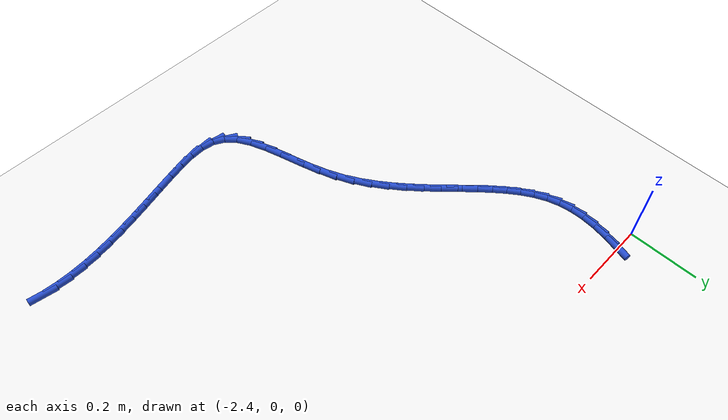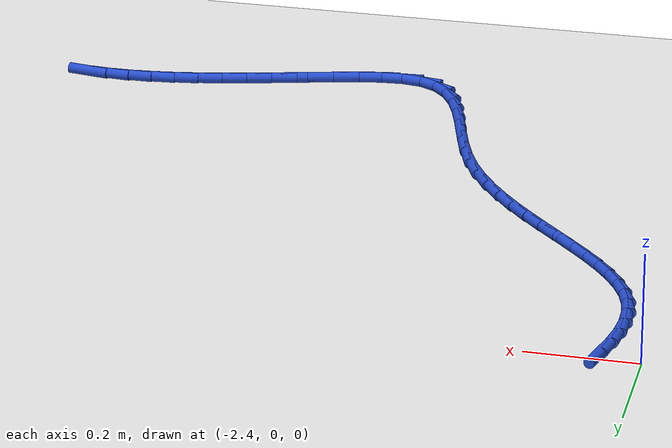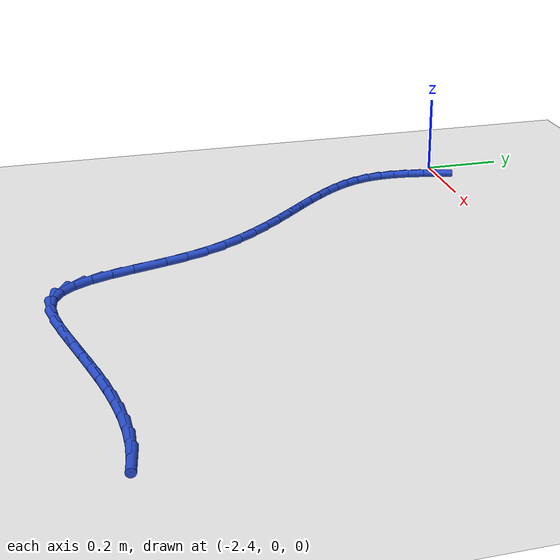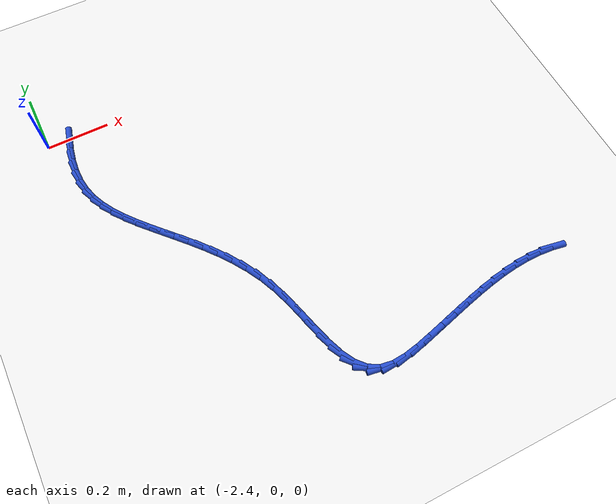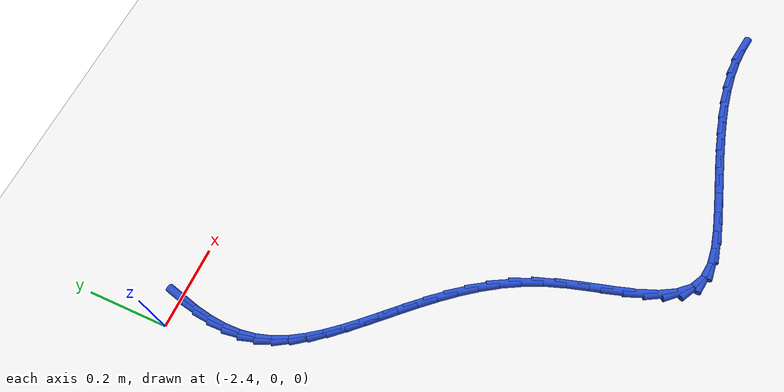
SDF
<sdf version="1.6">
 <world name="default">
  <model name="ground_plane">
   <static>1</static>
   <link name="link">
    <collision name="collision">
     <geometry><plane><normal>0 0 1</normal><size>100 100</size></plane></geometry>
     <surface><friction><ode><mu>100</mu><mu2>50</mu2></ode></friction></surface>
    </collision>
    <visual name="visual">
     <cast_shadows>0</cast_shadows>
     <geometry><plane><normal>0 0 1</normal><size>100 100</size></plane></geometry>
     <material>
      <script><uri>file://media/materials/scripts/gazebo.material</uri><name>Gazebo/WhiteGlow</name></script>
     </material>
    </visual>
   </link>
  </model>
  <model name="line">
   <link name="link_85">
    <pose>-2.3280978423598997 -0.002702165143702015 0.01 0 1.57 1.3194504571908288</pose>
    <collision name="collision">
     <geometry><cylinder><radius>0.01</radius><length>0.08</length></cylinder></geometry>
    </collision>
    <visual name="visual">
     <material>
      <script><name>Gazebo/Blue</name><uri>file://media/materials/scripts/gazebo.material</uri></script>
     </material>
     <geometry><cylinder><radius>0.01</radius><length>0.08</length></cylinder></geometry>
    </visual>
   </link>
   <link name="link_86">
    <pose>-2.3389520706183267 -0.04497335403110818 0.01 0 1.57 1.3944385432576636</pose>
    <collision name="collision">
     <geometry><cylinder><radius>0.01</radius><length>0.08</length></cylinder></geometry>
    </collision>
    <visual name="visual">
     <material>
      <script><name>Gazebo/Blue</name><uri>file://media/materials/scripts/gazebo.material</uri></script>
     </material>
     <geometry><cylinder><radius>0.01</radius><length>0.08</length></cylinder></geometry>
    </visual>
   </link>
   <link name="link_87">
    <pose>-2.3463109246212555 -0.08626670292172889 0.01 0 1.57 1.4860862478899712</pose>
    <collision name="collision">
     <geometry><cylinder><radius>0.01</radius><length>0.08</length></cylinder></geometry>
    </collision>
    <visual name="visual">
     <material>
      <script><name>Gazebo/Blue</name><uri>file://media/materials/scripts/gazebo.material</uri></script>
     </material>
     <geometry><cylinder><radius>0.01</radius><length>0.08</length></cylinder></geometry>
    </visual>
   </link>
   <link name="link_88">
    <pose>-2.3497240792425242 -0.12646247090614107 0.01 0 1.57 -1.5455859413409028</pose>
    <collision name="collision">
     <geometry><cylinder><radius>0.01</radius><length>0.08</length></cylinder></geometry>
    </collision>
    <visual name="visual">
     <material>
      <script><name>Gazebo/Blue</name><uri>file://media/materials/scripts/gazebo.material</uri></script>
     </material>
     <geometry><cylinder><radius>0.01</radius><length>0.08</length></cylinder></geometry>
    </visual>
   </link>
   <link name="link_89">
    <pose>-2.3487412093559685 -0.1654409170749221 0.01 0 1.57 -1.417154802262365</pose>
    <collision name="collision">
     <geometry><cylinder><radius>0.01</radius><length>0.08</length></cylinder></geometry>
    </collision>
    <visual name="visual">
     <material>
      <script><name>Gazebo/Blue</name><uri>file://media/materials/scripts/gazebo.material</uri></script>
     </material>
     <geometry><cylinder><radius>0.01</radius><length>0.08</length></cylinder></geometry>
    </visual>
   </link>
   <link name="link_90">
    <pose>-2.3429119898354256 -0.20308230051864734 0.01 0 1.57 -1.2741014134072206</pose>
    <collision name="collision">
     <geometry><cylinder><radius>0.01</radius><length>0.08</length></cylinder></geometry>
    </collision>
    <visual name="visual">
     <material>
      <script><name>Gazebo/Blue</name><uri>file://media/materials/scripts/gazebo.material</uri></script>
     </material>
     <geometry><cylinder><radius>0.01</radius><length>0.08</length></cylinder></geometry>
    </visual>
   </link>
   <link name="link_91">
    <pose>-2.331842697555519 -0.23928975633999397 0.01 0 1.57 -1.1399224422944256</pose>
    <collision name="collision">
     <geometry><cylinder><radius>0.01</radius><length>0.08</length></cylinder></geometry>
    </collision>
    <visual name="visual">
     <material>
      <script><name>Gazebo/Blue</name><uri>file://media/materials/scripts/gazebo.material</uri></script>
     </material>
     <geometry><cylinder><radius>0.01</radius><length>0.08</length></cylinder></geometry>
    </visual>
   </link>
   <link name="link_92">
    <pose>-2.315783024039038 -0.27422645923515465 0.01 0 1.57 -1.0304720593524865</pose>
    <collision name="collision">
     <geometry><cylinder><radius>0.01</radius><length>0.08</length></cylinder></geometry>
    </collision>
    <visual name="visual">
     <material>
      <script><name>Gazebo/Blue</name><uri>file://media/materials/scripts/gazebo.material</uri></script>
     </material>
     <geometry><cylinder><radius>0.01</radius><length>0.08</length></cylinder></geometry>
    </visual>
   </link>
   <link name="link_93">
    <pose>-2.295390945486528 -0.3082205944140638 0.01 0 1.57 -0.9462863864774075</pose>
    <collision name="collision">
     <geometry><cylinder><radius>0.01</radius><length>0.08</length></cylinder></geometry>
    </collision>
    <visual name="visual">
     <material>
      <script><name>Gazebo/Blue</name><uri>file://media/materials/scripts/gazebo.material</uri></script>
     </material>
     <geometry><cylinder><radius>0.01</radius><length>0.08</length></cylinder></geometry>
    </visual>
   </link>
   <link name="link_94">
    <pose>-2.2713309428291146 -0.34160297600954664 0.01 0 1.57 -0.8854207401880506</pose>
    <collision name="collision">
     <geometry><cylinder><radius>0.01</radius><length>0.08</length></cylinder></geometry>
    </collision>
    <visual name="visual">
     <material>
      <script><name>Gazebo/Blue</name><uri>file://media/materials/scripts/gazebo.material</uri></script>
     </material>
     <geometry><cylinder><radius>0.01</radius><length>0.08</length></cylinder></geometry>
    </visual>
   </link>
   <link name="link_95">
    <pose>-2.244267496997929 -0.3747044181544264 0.01 0 1.57 -0.8452575890997895</pose>
    <collision name="collision">
     <geometry><cylinder><radius>0.01</radius><length>0.08</length></cylinder></geometry>
    </collision>
    <visual name="visual">
     <material>
      <script><name>Gazebo/Blue</name><uri>file://media/materials/scripts/gazebo.material</uri></script>
     </material>
     <geometry><cylinder><radius>0.01</radius><length>0.08</length></cylinder></geometry>
    </visual>
   </link>
   <link name="link_96">
    <pose>-2.2148650889240966 -0.4078557349815283 0.01 0 1.57 -0.8233795523402913</pose>
    <collision name="collision">
     <geometry><cylinder><radius>0.01</radius><length>0.08</length></cylinder></geometry>
    </collision>
    <visual name="visual">
     <material>
      <script><name>Gazebo/Blue</name><uri>file://media/materials/scripts/gazebo.material</uri></script>
     </material>
     <geometry><cylinder><radius>0.01</radius><length>0.08</length></cylinder></geometry>
    </visual>
   </link>
   <link name="link_97">
    <pose>-2.1837881995387454 -0.4413877406236769 0.01 0 1.57 -0.817899994068516</pose>
    <collision name="collision">
     <geometry><cylinder><radius>0.01</radius><length>0.08</length></cylinder></geometry>
    </collision>
    <visual name="visual">
     <material>
      <script><name>Gazebo/Blue</name><uri>file://media/materials/scripts/gazebo.material</uri></script>
     </material>
     <geometry><cylinder><radius>0.01</radius><length>0.08</length></cylinder></geometry>
    </visual>
   </link>
   <link name="link_98">
    <pose>-2.1517013097730024 -0.47563124921369687 0.01 0 1.57 -0.8275098563048306</pose>
    <collision name="collision">
     <geometry><cylinder><radius>0.01</radius><length>0.08</length></cylinder></geometry>
    </collision>
    <visual name="visual">
     <material>
      <script><name>Gazebo/Blue</name><uri>file://media/materials/scripts/gazebo.material</uri></script>
     </material>
     <geometry><cylinder><radius>0.01</radius><length>0.08</length></cylinder></geometry>
    </visual>
   </link>
   <link name="link_99">
    <pose>-2.119268900557995 -0.5109170748844133 0.01 0 1.57 -0.8513971260220212</pose>
    <collision name="collision">
     <geometry><cylinder><radius>0.01</radius><length>0.08</length></cylinder></geometry>
    </collision>
    <visual name="visual">
     <material>
      <script><name>Gazebo/Blue</name><uri>file://media/materials/scripts/gazebo.material</uri></script>
     </material>
     <geometry><cylinder><radius>0.01</radius><length>0.08</length></cylinder></geometry>
    </visual>
   </link>
   <link name="link_100">
    <pose>-2.087155452824853 -0.5475760317686494 0.01 0 1.57 -0.8891058357198707</pose>
    <collision name="collision">
     <geometry><cylinder><radius>0.01</radius><length>0.08</length></cylinder></geometry>
    </collision>
    <visual name="visual">
     <material>
      <script><name>Gazebo/Blue</name><uri>file://media/materials/scripts/gazebo.material</uri></script>
     </material>
     <geometry><cylinder><radius>0.01</radius><length>0.08</length></cylinder></geometry>
    </visual>
   </link>
   <link name="link_101">
    <pose>-2.0560254475047017 -0.5859389339992308 0.01 0 1.57 -0.940351178228666</pose>
    <collision name="collision">
     <geometry><cylinder><radius>0.01</radius><length>0.08</length></cylinder></geometry>
    </collision>
    <visual name="visual">
     <material>
      <script><name>Gazebo/Blue</name><uri>file://media/materials/scripts/gazebo.material</uri></script>
     </material>
     <geometry><cylinder><radius>0.01</radius><length>0.08</length></cylinder></geometry>
    </visual>
   </link>
   <link name="link_102">
    <pose>-2.0265433655286698 -0.6263365957089816 0.01 0 1.57 -1.0047879758717106</pose>
    <collision name="collision">
     <geometry><cylinder><radius>0.01</radius><length>0.08</length></cylinder></geometry>
    </collision>
    <visual name="visual">
     <material>
      <script><name>Gazebo/Blue</name><uri>file://media/materials/scripts/gazebo.material</uri></script>
     </material>
     <geometry><cylinder><radius>0.01</radius><length>0.08</length></cylinder></geometry>
    </visual>
   </link>
   <link name="link_103">
    <pose>-1.999373687827884 -0.6690998310307266 0.01 0 1.57 -1.0817358065791876</pose>
    <collision name="collision">
     <geometry><cylinder><radius>0.01</radius><length>0.08</length></cylinder></geometry>
    </collision>
    <visual name="visual">
     <material>
      <script><name>Gazebo/Blue</name><uri>file://media/materials/scripts/gazebo.material</uri></script>
     </material>
     <geometry><cylinder><radius>0.01</radius><length>0.08</length></cylinder></geometry>
    </visual>
   </link>
   <link name="link_104">
    <pose>-1.9751808953334724 -0.714559454097291 0.01 0 1.57 -1.1697182579742926</pose>
    <collision name="collision">
     <geometry><cylinder><radius>0.01</radius><length>0.08</length></cylinder></geometry>
    </collision>
    <visual name="visual">
     <material>
      <script><name>Gazebo/Blue</name><uri>file://media/materials/scripts/gazebo.material</uri></script>
     </material>
     <geometry><cylinder><radius>0.01</radius><length>0.08</length></cylinder></geometry>
    </visual>
   </link>
   <link name="link_105">
    <pose>-1.9546224475881064 -0.7630389755471103 0.01 0 1.57 -1.2502158124433773</pose>
    <collision name="collision">
     <geometry><cylinder><radius>0.01</radius><length>0.08</length></cylinder></geometry>
    </collision>
    <visual name="visual">
     <material>
      <script><name>Gazebo/Blue</name><uri>file://media/materials/scripts/gazebo.material</uri></script>
     </material>
     <geometry><cylinder><radius>0.01</radius><length>0.08</length></cylinder></geometry>
    </visual>
   </link>
   <link name="link_106">
    <pose>-1.9376568753385848 -0.8141348956033229 0.01 0 1.57 -1.2952111738500083</pose>
    <collision name="collision">
     <geometry><cylinder><radius>0.01</radius><length>0.08</length></cylinder></geometry>
    </collision>
    <visual name="visual">
     <material>
      <script><name>Gazebo/Blue</name><uri>file://media/materials/scripts/gazebo.material</uri></script>
     </material>
     <geometry><cylinder><radius>0.01</radius><length>0.08</length></cylinder></geometry>
    </visual>
   </link>
   <link name="link_107">
    <pose>-1.9229595997198383 -0.8661090519922399 0.01 0 1.57 -1.304728936408987</pose>
    <collision name="collision">
     <geometry><cylinder><radius>0.01</radius><length>0.08</length></cylinder></geometry>
    </collision>
    <visual name="visual">
     <material>
      <script><name>Gazebo/Blue</name><uri>file://media/materials/scripts/gazebo.material</uri></script>
     </material>
     <geometry><cylinder><radius>0.01</radius><length>0.08</length></cylinder></geometry>
    </visual>
   </link>
   <link name="link_108">
    <pose>-1.9090684886686347 -0.9170802026181482 0.01 0 1.57 -1.2770324754201199</pose>
    <collision name="collision">
     <geometry><cylinder><radius>0.01</radius><length>0.08</length></cylinder></geometry>
    </collision>
    <visual name="visual">
     <material>
      <script><name>Gazebo/Blue</name><uri>file://media/materials/scripts/gazebo.material</uri></script>
     </material>
     <geometry><cylinder><radius>0.01</radius><length>0.08</length></cylinder></geometry>
    </visual>
   </link>
   <link name="link_109">
    <pose>-1.8945214101217427 -0.965167105385335 0.01 0 1.57 -1.2035602330436568</pose>
    <collision name="collision">
     <geometry><cylinder><radius>0.01</radius><length>0.08</length></cylinder></geometry>
    </collision>
    <visual name="visual">
     <material>
      <script><name>Gazebo/Blue</name><uri>file://media/materials/scripts/gazebo.material</uri></script>
     </material>
     <geometry><cylinder><radius>0.01</radius><length>0.08</length></cylinder></geometry>
    </visual>
   </link>
   <link name="link_110">
    <pose>-1.8778562320159304 -1.0084885181980876 0.01 0 1.57 -1.0663982992321828</pose>
    <collision name="collision">
     <geometry><cylinder><radius>0.01</radius><length>0.08</length></cylinder></geometry>
    </collision>
    <visual name="visual">
     <material>
      <script><name>Gazebo/Blue</name><uri>file://media/materials/scripts/gazebo.material</uri></script>
     </material>
     <geometry><cylinder><radius>0.01</radius><length>0.08</length></cylinder></geometry>
    </visual>
   </link>
   <link name="link_111">
    <pose>-1.8576108222879668 -1.0451631989606909 0.01 0 1.57 -0.8388507254420966</pose>
    <collision name="collision">
     <geometry><cylinder><radius>0.01</radius><length>0.08</length></cylinder></geometry>
    </collision>
    <visual name="visual">
     <material>
      <script><name>Gazebo/Blue</name><uri>file://media/materials/scripts/gazebo.material</uri></script>
     </material>
     <geometry><cylinder><radius>0.01</radius><length>0.08</length></cylinder></geometry>
    </visual>
   </link>
   <link name="link_112">
    <pose>-1.8323230488746198 -1.0733099055774327 0.01 0 1.57 -0.5089022252920407</pose>
    <collision name="collision">
     <geometry><cylinder><radius>0.01</radius><length>0.08</length></cylinder></geometry>
    </collision>
    <visual name="visual">
     <material>
      <script><name>Gazebo/Blue</name><uri>file://media/materials/scripts/gazebo.material</uri></script>
     </material>
     <geometry><cylinder><radius>0.01</radius><length>0.08</length></cylinder></geometry>
    </visual>
   </link>
   <link name="link_113">
    <pose>-1.8005307797126577 -1.0910473959525997 0.01 0 1.57 -0.15858898993376433</pose>
    <collision name="collision">
     <geometry><cylinder><radius>0.01</radius><length>0.08</length></cylinder></geometry>
    </collision>
    <visual name="visual">
     <material>
      <script><name>Gazebo/Blue</name><uri>file://media/materials/scripts/gazebo.material</uri></script>
     </material>
     <geometry><cylinder><radius>0.01</radius><length>0.08</length></cylinder></geometry>
    </visual>
   </link>
   <link name="link_114">
    <pose>-1.7613843639570663 -1.097308161765927 0.01 0 1.57 0.06616239644078849</pose>
    <collision name="collision">
     <geometry><cylinder><radius>0.01</radius><length>0.08</length></cylinder></geometry>
    </collision>
    <visual name="visual">
     <material>
      <script><name>Gazebo/Blue</name><uri>file://media/materials/scripts/gazebo.material</uri></script>
     </material>
     <geometry><cylinder><radius>0.01</radius><length>0.08</length></cylinder></geometry>
    </visual>
   </link>
   <link name="link_115">
    <pose>-1.7165264410293706 -1.0943359158542791 0.01 0 1.57 0.18663784550487927</pose>
    <collision name="collision">
     <geometry><cylinder><radius>0.01</radius><length>0.08</length></cylinder></geometry>
    </collision>
    <visual name="visual">
     <material>
      <script><name>Gazebo/Blue</name><uri>file://media/materials/scripts/gazebo.material</uri></script>
     </material>
     <geometry><cylinder><radius>0.01</radius><length>0.08</length></cylinder></geometry>
    </visual>
   </link>
   <link name="link_116">
    <pose>-1.6682334967752073 -1.0852164903365542 0.01 0 1.57 0.2415197003030446</pose>
    <collision name="collision">
     <geometry><cylinder><radius>0.01</radius><length>0.08</length></cylinder></geometry>
    </collision>
    <visual name="visual">
     <material>
      <script><name>Gazebo/Blue</name><uri>file://media/materials/scripts/gazebo.material</uri></script>
     </material>
     <geometry><cylinder><radius>0.01</radius><length>0.08</length></cylinder></geometry>
    </visual>
   </link>
   <link name="link_117">
    <pose>-1.6187814457449736 -1.073035064883713 0.01 0 1.57 0.2555841043611912</pose>
    <collision name="collision">
     <geometry><cylinder><radius>0.01</radius><length>0.08</length></cylinder></geometry>
    </collision>
    <visual name="visual">
     <material>
      <script><name>Gazebo/Blue</name><uri>file://media/materials/scripts/gazebo.material</uri></script>
     </material>
     <geometry><cylinder><radius>0.01</radius><length>0.08</length></cylinder></geometry>
    </visual>
   </link>
   <link name="link_118">
    <pose>-1.5699106732085284 -1.0602651974214934 0.01 0 1.57 0.2569155622842885</pose>
    <collision name="collision">
     <geometry><cylinder><radius>0.01</radius><length>0.08</length></cylinder></geometry>
    </collision>
    <visual name="visual">
     <material>
      <script><name>Gazebo/Blue</name><uri>file://media/materials/scripts/gazebo.material</uri></script>
     </material>
     <geometry><cylinder><radius>0.01</radius><length>0.08</length></cylinder></geometry>
    </visual>
   </link>
   <link name="link_119">
    <pose>-1.5218323945748748 -1.0476339988128374 0.01 0 1.57 0.24971774128030078</pose>
    <collision name="collision">
     <geometry><cylinder><radius>0.01</radius><length>0.08</length></cylinder></geometry>
    </collision>
    <visual name="visual">
     <material>
      <script><name>Gazebo/Blue</name><uri>file://media/materials/scripts/gazebo.material</uri></script>
     </material>
     <geometry><cylinder><radius>0.01</radius><length>0.08</length></cylinder></geometry>
    </visual>
   </link>
   <link name="link_120">
    <pose>-1.474486656355784 -1.0355588810859038 0.01 0 1.57 0.2335195178780616</pose>
    <collision name="collision">
     <geometry><cylinder><radius>0.01</radius><length>0.08</length></cylinder></geometry>
    </collision>
    <visual name="visual">
     <material>
      <script><name>Gazebo/Blue</name><uri>file://media/materials/scripts/gazebo.material</uri></script>
     </material>
     <geometry><cylinder><radius>0.01</radius><length>0.08</length></cylinder></geometry>
    </visual>
   </link>
   <link name="link_121">
    <pose>-1.427813505063026 -1.024457256268853 0.01 0 1.57 0.20778245002325502</pose>
    <collision name="collision">
     <geometry><cylinder><radius>0.01</radius><length>0.08</length></cylinder></geometry>
    </collision>
    <visual name="visual">
     <material>
      <script><name>Gazebo/Blue</name><uri>file://media/materials/scripts/gazebo.material</uri></script>
     </material>
     <geometry><cylinder><radius>0.01</radius><length>0.08</length></cylinder></geometry>
    </visual>
   </link>
   <link name="link_122">
    <pose>-1.3817529872083745 -1.0147465363898442 0.01 0 1.57 0.1719347751936774</pose>
    <collision name="collision">
     <geometry><cylinder><radius>0.01</radius><length>0.08</length></cylinder></geometry>
    </collision>
    <visual name="visual">
     <material>
      <script><name>Gazebo/Blue</name><uri>file://media/materials/scripts/gazebo.material</uri></script>
     </material>
     <geometry><cylinder><radius>0.01</radius><length>0.08</length></cylinder></geometry>
    </visual>
   </link>
   <link name="link_123">
    <pose>-1.336245149303601 -1.0068441334770377 0.01 0 1.57 0.12544379279107684</pose>
    <collision name="collision">
     <geometry><cylinder><radius>0.01</radius><length>0.08</length></cylinder></geometry>
    </collision>
    <visual name="visual">
     <material>
      <script><name>Gazebo/Blue</name><uri>file://media/materials/scripts/gazebo.material</uri></script>
     </material>
     <geometry><cylinder><radius>0.01</radius><length>0.08</length></cylinder></geometry>
    </visual>
   </link>
   <link name="link_124">
    <pose>-1.2912300378604746 -1.0011674595585924 0.01 0 1.57 0.06793865709618685</pose>
    <collision name="collision">
     <geometry><cylinder><radius>0.01</radius><length>0.08</length></cylinder></geometry>
    </collision>
    <visual name="visual">
     <material>
      <script><name>Gazebo/Blue</name><uri>file://media/materials/scripts/gazebo.material</uri></script>
     </material>
     <geometry><cylinder><radius>0.01</radius><length>0.08</length></cylinder></geometry>
    </visual>
   </link>
   <link name="link_125">
    <pose>-1.246647699390768 -0.9981339266626679 0.01 0 1.57 -0.0006111840167577544</pose>
    <collision name="collision">
     <geometry><cylinder><radius>0.01</radius><length>0.08</length></cylinder></geometry>
    </collision>
    <visual name="visual">
     <material>
      <script><name>Gazebo/Blue</name><uri>file://media/materials/scripts/gazebo.material</uri></script>
     </material>
     <geometry><cylinder><radius>0.01</radius><length>0.08</length></cylinder></geometry>
    </visual>
   </link>
   <link name="link_126">
    <pose>-1.2024381804062518 -0.9981609468174242 0.01 0 1.57 -0.07967725923821944</pose>
    <collision name="collision">
     <geometry><cylinder><radius>0.01</radius><length>0.08</length></cylinder></geometry>
    </collision>
    <visual name="visual">
     <material>
      <script><name>Gazebo/Blue</name><uri>file://media/materials/scripts/gazebo.material</uri></script>
     </material>
     <geometry><cylinder><radius>0.01</radius><length>0.08</length></cylinder></geometry>
    </visual>
   </link>
   <link name="link_127">
    <pose>-1.1585415274186992 -1.001665932051021 0.01 0 1.57 -0.167965373758592</pose>
    <collision name="collision">
     <geometry><cylinder><radius>0.01</radius><length>0.08</length></cylinder></geometry>
    </collision>
    <visual name="visual">
     <material>
      <script><name>Gazebo/Blue</name><uri>file://media/materials/scripts/gazebo.material</uri></script>
     </material>
     <geometry><cylinder><radius>0.01</radius><length>0.08</length></cylinder></geometry>
    </visual>
   </link>
  </model>
 </world>
</sdf>
